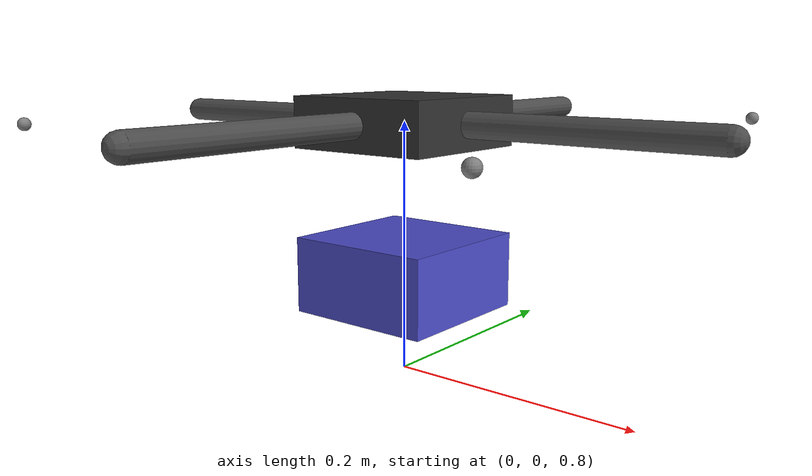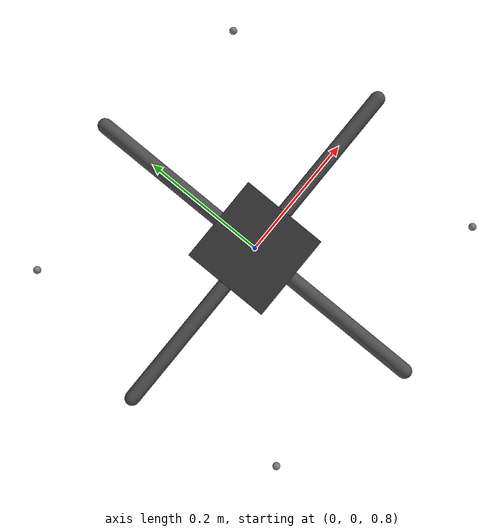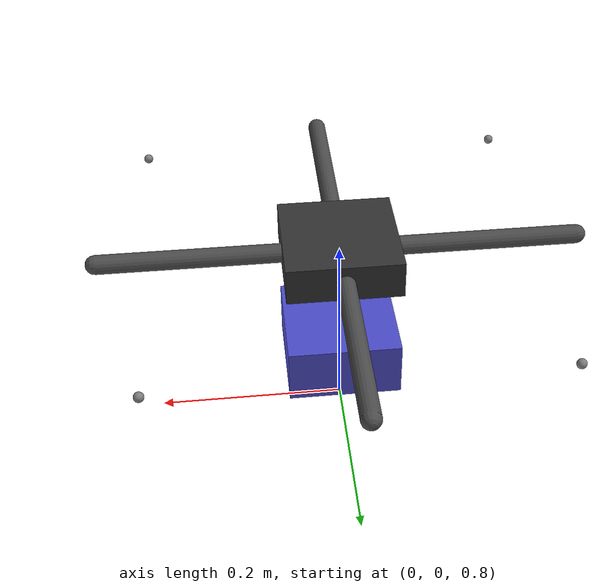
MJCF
<mujoco model="quad">
  <option timestep="0.002" gravity="0 0 -9.81" integrator="RK4"/>
  <size nuser_body="1"/>

  <worldbody>

    <body name="base" pos="0 0 1">
      <freejoint/>

      <inertial pos="0 0 0" mass="1.0" diaginertia="0.02 0.02 0.04"/>

      <geom type="capsule" fromto="-0.25 0 0 0.25 0 0" size="0.01" rgba="0.3 0.3 0.3 1"/>
      <geom type="capsule" fromto="0 -0.25 0 0 0.25 0" size="0.01" rgba="0.3 0.3 0.3 1"/>
      <geom type="box" size="0.06 0.06 0.02" rgba="0.2 0.2 0.2 1"/>

      <site name="rotor0" pos=" 0.20  0.20  0.0" size="0.005"/>
      <site name="rotor1" pos="-0.20  0.20  0.0" size="0.005"/>
      <site name="rotor2" pos="-0.20 -0.20  0.0" size="0.005"/>
      <site name="rotor3" pos=" 0.20 -0.20  0.0" size="0.005"/>

      <body name="payload" pos="0 0 -0.12">
        <inertial pos="0 0 0" mass="0.45" diaginertia="0.001 0.001 0.001"/>
        <geom name="payload_geom" type="box" size="0.06 0.06 0.03" rgba="0.3 0.3 0.8 1"/>
      </body>
    </body>
  </worldbody>
</mujoco>
